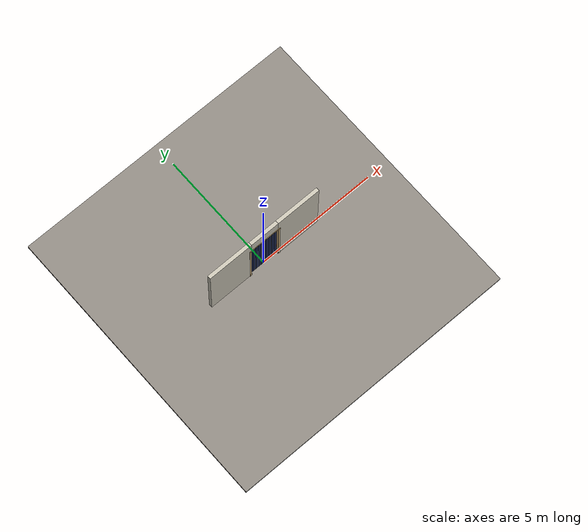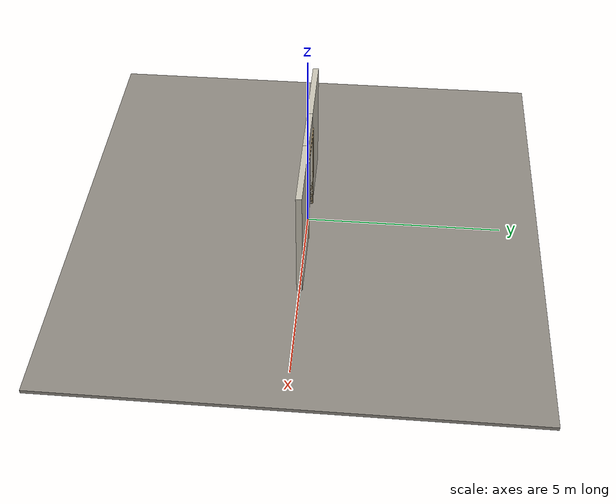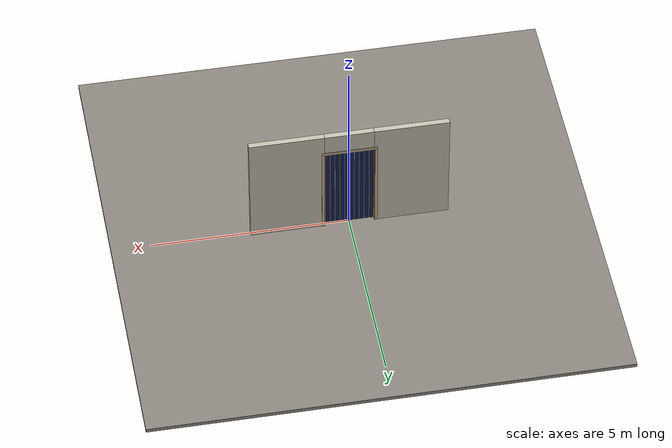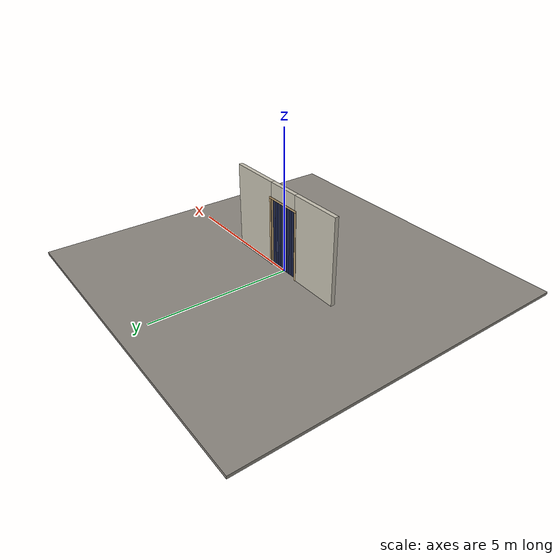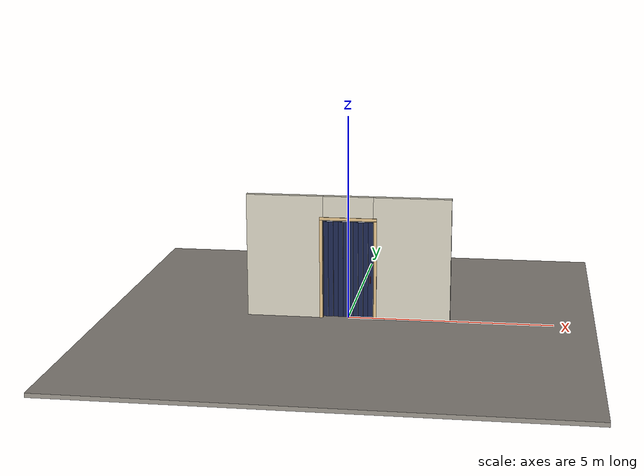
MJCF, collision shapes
<?xml version="1.0" ?>
<mujoco model="db0927_accordion_full">
  <compiler angle="radian" meshdir="../../hardware" texturedir="../../textures" autolimits="true" inertiafromgeom="false"/>
  <option timestep="0.002" integrator="implicitfast" cone="elliptic" impratio="10" noslip_iterations="3">
    <flag multiccd="enable"/>
  </option>
  <size memory="16M"/>
  <default>
    <geom condim="4" solref="0.005 1" solimp="0.95 0.99 0.001"/>
    <joint solreflimit="0.005 1" solimplimit="0.95 0.99 0.001"/>
    <tendon solreflimit="0.005 1"/>
    <equality solref="0.002 1"/>
  </default>
  <visual>
    <headlight ambient="0.4 0.4 0.4" diffuse="0.7 0.7 0.7" specular="0.2 0.2 0.2"/>
    <quality shadowsize="4096"/>
    <map znear="0.01" zfar="60"/>
  </visual>
  <asset>
    <mesh name="pull_1e5d69a91a" file="pull_1e5d69a91a.obj"/>
    <material name="mat_floor" rgba="0.55 0.53 0.5 1" specular="0.2" shininess="0.15" reflectance="0"/>
    <material name="mat_wall" rgba="0.78 0.76 0.7 1" specular="0.2" shininess="0.1" reflectance="0"/>
    <material name="mat_frame" rgba="0.82 0.7 0.5 1" specular="0.2" shininess="0.45" reflectance="0"/>
    <material name="mat_track" rgba="0.8 0.81 0.83 1" specular="0.8" shininess="0.6" reflectance="0.4"/>
    <material name="mat_hinge" rgba="0.65 0.66 0.68 1" specular="0.74" shininess="0.5" reflectance="0.36"/>
    <material name="mat_panel_0_0" rgba="0.09 0.13 0.28 1" specular="0.2" shininess="0.64" reflectance="0"/>
    <material name="mat_panel_0_1" rgba="0.09 0.13 0.28 1" specular="0.2" shininess="0.64" reflectance="0"/>
    <material name="mat_panel_0_2" rgba="0.09 0.13 0.28 1" specular="0.2" shininess="0.64" reflectance="0"/>
    <material name="mat_panel_0_3" rgba="0.09 0.13 0.28 1" specular="0.2" shininess="0.64" reflectance="0"/>
    <material name="mat_panel_0_4" rgba="0.09 0.13 0.28 1" specular="0.2" shininess="0.64" reflectance="0"/>
    <material name="mat_panel_0_5" rgba="0.09 0.13 0.28 1" specular="0.2" shininess="0.64" reflectance="0"/>
    <material name="mat_panel_0_6" rgba="0.09 0.13 0.28 1" specular="0.2" shininess="0.64" reflectance="0"/>
    <material name="mat_panel_0_7" rgba="0.09 0.13 0.28 1" specular="0.2" shininess="0.64" reflectance="0"/>
    <material name="mat_panel_0_8" rgba="0.09 0.13 0.28 1" specular="0.2" shininess="0.64" reflectance="0"/>
    <material name="mat_panel_0_9" rgba="0.09 0.13 0.28 1" specular="0.2" shininess="0.64" reflectance="0"/>
    <material name="mat_op_stainless" rgba="0.75 0.76 0.77 1" specular="0.8" shininess="0.65" reflectance="0.4"/>
    <texture name="skybox" type="skybox" builtin="gradient" rgb1="0.6 0.7 0.85" rgb2="0.9 0.92 0.95" width="256" height="256"/>
  </asset>
  <worldbody>
    <light name="sun" pos="1.5 -2.5 4" dir="-0.3 0.5 -0.8" directional="true" diffuse="0.8 0.8 0.8" specular="0.3 0.3 0.3" castshadow="true"/>
    <light name="fill" pos="-1.5 2.5 3" dir="0.3 -0.5 -0.7" directional="true" diffuse="0.35 0.35 0.4" castshadow="false"/>
    <camera name="robot_view" pos="0 -2.926563 2.046937" xyaxes="1 0 0 0 0.26963 0.962964" fovy="52"/>
    <camera name="far_view" pos="0 2.926563 2.046937" xyaxes="-1 0 0 0 -0.26963 0.962964" fovy="52"/>
    <camera name="iso" pos="2.224187 -2.458313 2.515188" xyaxes="0.741536 0.670913 0 -0.242917 0.268487 0.932151" fovy="46"/>
    <camera name="detail_handle" pos="0.728029 -0.866 1.28" xyaxes="0.97561 0.219512 0 -0.070934 0.315262 0.94635" fovy="38"/>
    <geom name="floor" type="box" size="6 6 0.05" pos="0 0 -0.05" material="mat_floor" group="0" contype="1" conaffinity="1" friction="0.8 0.005 0.0001" density="2400"/>
    <geom name="wall_left" type="box" size="0.94175 0.0725 1.5275" pos="-1.55825 0 1.5275" material="mat_wall" group="0" contype="1" conaffinity="1" friction="0.6 0.005 0.0001" density="800"/>
    <geom name="wall_right" type="box" size="0.94175 0.0725 1.5275" pos="1.55825 0 1.5275" material="mat_wall" group="0" contype="1" conaffinity="1" friction="0.6 0.005 0.0001" density="800"/>
    <geom name="wall_header" type="box" size="0.6165 0.0725 0.3" pos="0 0 2.755" material="mat_wall" group="0" contype="1" conaffinity="1" friction="0.6 0.005 0.0001" density="800"/>
    <geom name="jamb_hinge" type="box" size="0.0095 0.0725 1.2275" pos="-0.626 0 1.2275" material="mat_frame" group="0" contype="1" conaffinity="1" friction="0.6 0.005 0.0001" density="400"/>
    <geom name="jamb_strike" type="box" size="0.0095 0.0725 1.2275" pos="0.626 0 1.2275" material="mat_frame" group="0" contype="1" conaffinity="1" friction="0.6 0.005 0.0001" density="400"/>
    <geom name="stud_strike" type="box" size="0.015 0.0725 1.2275" pos="0.6505 0 1.2275" material="mat_wall" group="0" contype="1" conaffinity="1" friction="0.6 0.005 0.0001" density="500"/>
    <geom name="jamb_head" type="box" size="0.6505 0.0725 0.0095" pos="0.015 0 2.4645" material="mat_frame" group="0" contype="1" conaffinity="1" friction="0.6 0.005 0.0001" density="400"/>
    <geom name="head_stud" type="box" size="0.6505 0.0725 0.015" pos="0.015 0 2.489" material="mat_wall" group="0" contype="1" conaffinity="1" friction="0.6 0.005 0.0001" density="500"/>
    <geom name="casing_l_n" type="box" size="0.035 0.008 1.237" pos="-0.6655 -0.0805 1.2275" material="mat_frame" group="2" contype="0" conaffinity="0" density="400"/>
    <geom name="casing_r_n" type="box" size="0.035 0.008 1.237" pos="0.6655 -0.0805 1.2275" material="mat_frame" group="2" contype="0" conaffinity="0" density="400"/>
    <geom name="casing_h_n" type="box" size="0.7005 0.008 0.035" pos="0 -0.0805 2.504" material="mat_frame" group="2" contype="0" conaffinity="0" density="400"/>
    <geom name="casing_l_p" type="box" size="0.035 0.008 1.237" pos="-0.6655 0.0805 1.2275" material="mat_frame" group="2" contype="0" conaffinity="0" density="400"/>
    <geom name="casing_r_p" type="box" size="0.035 0.008 1.237" pos="0.6655 0.0805 1.2275" material="mat_frame" group="2" contype="0" conaffinity="0" density="400"/>
    <geom name="casing_h_p" type="box" size="0.7005 0.008 0.035" pos="0 0.0805 2.504" material="mat_frame" group="2" contype="0" conaffinity="0" density="400"/>
    <geom name="fold_track" type="box" size="0.6165 0.02 0.015" pos="0 0 2.44" material="mat_track" group="1" contype="0" conaffinity="0" density="2700"/>
    <site name="approach_point" pos="0 -1.5 0" quat="1 0 0 0" size="0.05" rgba="0.2 0.9 0.2 0.5" group="4"/>
    <site name="goal_point" pos="0 1.5 0" quat="1 0 0 0" size="0.05" rgba="0.2 0.9 0.2 0.5" group="4"/>
    <site name="door_plane_center" pos="0 0 1.2275" quat="1 0 0 0" size="0.02" rgba="0.2 0.9 0.2 0.5" group="4"/>
    <body name="panel_0_0" pos="-0.6165 0 0">
      <inertial pos="0.062256 0 1.230656" mass="4.421632" quat="0.500149 0.500149 0.499851 -0.499851" diaginertia="0.00491225 2.159661335 2.164467151"/>
      <joint name="panel_0_0_hinge" type="hinge" axis="0 0 -1" pos="0.035 0 0" limited="true" range="0 1.48353" damping="1.074699" frictionloss="11.272501" armature="0.02"/>
      <geom name="panel_0_0_slab" type="box" size="0.0575 0.006 1.2" pos="0.0625 0 1.22" material="mat_panel_0_0" group="0" contype="1" conaffinity="1" friction="0.4 0.005 0.0001" density="1"/>
      <geom name="panel_0_0_pivot_pin" type="cylinder" size="0.008 0.0105" pos="0.035 0 2.4205" material="mat_hinge" group="1" contype="0" conaffinity="0" density="7850"/>
      <body name="panel_0_1" pos="0.122 0 0">
        <inertial pos="0.000174 0.005983 1.22" mass="4.733081" quat="0.518419 -0.480876 0.518419 0.480876" diaginertia="0.00011416 2.234303744 2.234369567"/>
        <joint name="panel_0_1_hinge" type="hinge" axis="0 0 -1" pos="0 0.006 0" limited="true" range="-3.141593 0" damping="0.2" frictionloss="0.1" armature="0.005"/>
        <geom name="panel_0_1_slab" type="box" size="0.059 0.006 1.2" pos="0.061 0 1.22" material="mat_panel_0_1" group="0" contype="1" conaffinity="1" friction="0.4 0.005 0.0001" density="1"/>
        <geom name="panel_0_1_knuckle" type="cylinder" size="0.0045 1.19" pos="0 0.006 1.22" material="mat_hinge" group="1" contype="0" conaffinity="0" density="7850"/>
        <body name="panel_0_2" pos="0.122 0 0">
          <inertial pos="0.000174 -0.005983 1.22" mass="4.733081" quat="0.480876 -0.518419 0.480876 0.518419" diaginertia="0.00011416 2.234303744 2.234369567"/>
          <joint name="panel_0_2_hinge" type="hinge" axis="0 0 -1" pos="0 -0.006 0" limited="true" range="0 3.141593" damping="0.2" frictionloss="0.1" armature="0.005"/>
          <geom name="panel_0_2_slab" type="box" size="0.059 0.006 1.2" pos="0.061 0 1.22" material="mat_panel_0_2" group="0" contype="1" conaffinity="1" friction="0.4 0.005 0.0001" density="1"/>
          <geom name="panel_0_2_knuckle" type="cylinder" size="0.0045 1.19" pos="0 -0.006 1.22" material="mat_hinge" group="1" contype="0" conaffinity="0" density="7850"/>
          <body name="panel_0_3" pos="0.122 0 0">
            <inertial pos="0.000174 0.005983 1.22" mass="4.733081" quat="0.518419 -0.480876 0.518419 0.480876" diaginertia="0.00011416 2.234303744 2.234369567"/>
            <joint name="panel_0_3_hinge" type="hinge" axis="0 0 -1" pos="0 0.006 0" limited="true" range="-3.141593 0" damping="0.2" frictionloss="0.1" armature="0.005"/>
            <geom name="panel_0_3_slab" type="box" size="0.059 0.006 1.2" pos="0.061 0 1.22" material="mat_panel_0_3" group="0" contype="1" conaffinity="1" friction="0.4 0.005 0.0001" density="1"/>
            <geom name="panel_0_3_knuckle" type="cylinder" size="0.0045 1.19" pos="0 0.006 1.22" material="mat_hinge" group="1" contype="0" conaffinity="0" density="7850"/>
            <body name="panel_0_4" pos="0.122 0 0">
              <inertial pos="0.000174 -0.005983 1.22" mass="4.733081" quat="0.480876 -0.518419 0.480876 0.518419" diaginertia="0.00011416 2.234303744 2.234369567"/>
              <joint name="panel_0_4_hinge" type="hinge" axis="0 0 -1" pos="0 -0.006 0" limited="true" range="0 3.141593" damping="0.2" frictionloss="0.1" armature="0.005"/>
              <geom name="panel_0_4_slab" type="box" size="0.059 0.006 1.2" pos="0.061 0 1.22" material="mat_panel_0_4" group="0" contype="1" conaffinity="1" friction="0.4 0.005 0.0001" density="1"/>
              <geom name="panel_0_4_knuckle" type="cylinder" size="0.0045 1.19" pos="0 -0.006 1.22" material="mat_hinge" group="1" contype="0" conaffinity="0" density="7850"/>
              <body name="panel_0_5" pos="0.122 0 0">
                <inertial pos="0.000174 0.005983 1.22" mass="4.733081" quat="0.518419 -0.480876 0.518419 0.480876" diaginertia="0.00011416 2.234303744 2.234369567"/>
                <joint name="panel_0_5_hinge" type="hinge" axis="0 0 -1" pos="0 0.006 0" limited="true" range="-3.141593 0" damping="0.2" frictionloss="0.1" armature="0.005"/>
                <geom name="panel_0_5_slab" type="box" size="0.059 0.006 1.2" pos="0.061 0 1.22" material="mat_panel_0_5" group="0" contype="1" conaffinity="1" friction="0.4 0.005 0.0001" density="1"/>
                <geom name="panel_0_5_knuckle" type="cylinder" size="0.0045 1.19" pos="0 0.006 1.22" material="mat_hinge" group="1" contype="0" conaffinity="0" density="7850"/>
                <body name="panel_0_6" pos="0.122 0 0">
                  <inertial pos="0.000174 -0.005983 1.22" mass="4.733081" quat="0.480876 -0.518419 0.480876 0.518419" diaginertia="0.00011416 2.234303744 2.234369567"/>
                  <joint name="panel_0_6_hinge" type="hinge" axis="0 0 -1" pos="0 -0.006 0" limited="true" range="0 3.141593" damping="0.2" frictionloss="0.1" armature="0.005"/>
                  <geom name="panel_0_6_slab" type="box" size="0.059 0.006 1.2" pos="0.061 0 1.22" material="mat_panel_0_6" group="0" contype="1" conaffinity="1" friction="0.4 0.005 0.0001" density="1"/>
                  <geom name="panel_0_6_knuckle" type="cylinder" size="0.0045 1.19" pos="0 -0.006 1.22" material="mat_hinge" group="1" contype="0" conaffinity="0" density="7850"/>
                  <body name="panel_0_7" pos="0.122 0 0">
                    <inertial pos="0.000174 0.005983 1.22" mass="4.733081" quat="0.518419 -0.480876 0.518419 0.480876" diaginertia="0.00011416 2.234303744 2.234369567"/>
                    <joint name="panel_0_7_hinge" type="hinge" axis="0 0 -1" pos="0 0.006 0" limited="true" range="-3.141593 0" damping="0.2" frictionloss="0.1" armature="0.005"/>
                    <geom name="panel_0_7_slab" type="box" size="0.059 0.006 1.2" pos="0.061 0 1.22" material="mat_panel_0_7" group="0" contype="1" conaffinity="1" friction="0.4 0.005 0.0001" density="1"/>
                    <geom name="panel_0_7_knuckle" type="cylinder" size="0.0045 1.19" pos="0 0.006 1.22" material="mat_hinge" group="1" contype="0" conaffinity="0" density="7850"/>
                    <body name="panel_0_8" pos="0.122 0 0">
                      <inertial pos="0.000174 -0.005983 1.22" mass="4.733081" quat="0.480876 -0.518419 0.480876 0.518419" diaginertia="0.00011416 2.234303744 2.234369567"/>
                      <joint name="panel_0_8_hinge" type="hinge" axis="0 0 -1" pos="0 -0.006 0" limited="true" range="0 3.141593" damping="0.2" frictionloss="0.1" armature="0.005"/>
                      <geom name="panel_0_8_slab" type="box" size="0.059 0.006 1.2" pos="0.061 0 1.22" material="mat_panel_0_8" group="0" contype="1" conaffinity="1" friction="0.4 0.005 0.0001" density="1"/>
                      <geom name="panel_0_8_knuckle" type="cylinder" size="0.0045 1.19" pos="0 -0.006 1.22" material="mat_hinge" group="1" contype="0" conaffinity="0" density="7850"/>
                      <body name="panel_0_9" pos="0.122 0 0">
                        <inertial pos="0.018361 -0.011072 1.159748" mass="5.183639" quat="0.654491 -0.27526 0.651208 0.267958" diaginertia="0.009011116 1.83164189 1.83993401"/>
                        <joint name="panel_0_9_hinge" type="hinge" axis="0 0 -1" pos="0 0.006 0" limited="true" range="-3.141593 0" damping="0.2" frictionloss="0.1" armature="0.005"/>
                        <geom name="panel_0_9_slab" type="box" size="0.062265 0.006 1.2" pos="0.064265 0 1.22" material="mat_panel_0_9" group="0" contype="1" conaffinity="1" friction="0.4 0.005 0.0001" density="1"/>
                        <geom name="panel_0_9_knuckle" type="cylinder" size="0.0045 1.19" pos="0 0.006 1.22" material="mat_hinge" group="1" contype="0" conaffinity="0" density="7850"/>
                        <geom name="panel_0_9_pull_n" type="mesh" mesh="pull_1e5d69a91a" pos="0.066529 -0.006 1" quat="0.707107 0.707107 0 0" material="mat_op_stainless" group="1" contype="0" conaffinity="0" density="3000"/>
                        <geom name="panel_0_9_pull_col_n" type="capsule" size="0.0095 0.08" pos="0.066529 -0.066 1" material="mat_op_stainless" group="3" contype="1" conaffinity="1" rgba="0.8 0.3 0.3 0.25" friction="0.7 0.01 0.0001" density="3000"/>
                        <site name="panel_0_9_pull_grip_n" pos="0.066529 -0.066 1" quat="1 0 0 0" size="0.012" rgba="0.2 0.9 0.2 0.5" group="4"/>
                      </body>
                    </body>
                  </body>
                </body>
              </body>
            </body>
          </body>
        </body>
      </body>
    </body>
  </worldbody>
  <equality>
    <joint name="panel_0_1_couple" joint1="panel_0_1_hinge" joint2="panel_0_0_hinge" polycoef="0 -2 0 0 0" active="true"/>
    <joint name="panel_0_2_couple" joint1="panel_0_2_hinge" joint2="panel_0_0_hinge" polycoef="0 2 0 0 0" active="true"/>
    <joint name="panel_0_3_couple" joint1="panel_0_3_hinge" joint2="panel_0_0_hinge" polycoef="0 -2 0 0 0" active="true"/>
    <joint name="panel_0_4_couple" joint1="panel_0_4_hinge" joint2="panel_0_0_hinge" polycoef="0 2 0 0 0" active="true"/>
    <joint name="panel_0_5_couple" joint1="panel_0_5_hinge" joint2="panel_0_0_hinge" polycoef="0 -2 0 0 0" active="true"/>
    <joint name="panel_0_6_couple" joint1="panel_0_6_hinge" joint2="panel_0_0_hinge" polycoef="0 2 0 0 0" active="true"/>
    <joint name="panel_0_7_couple" joint1="panel_0_7_hinge" joint2="panel_0_0_hinge" polycoef="0 -2 0 0 0" active="true"/>
    <joint name="panel_0_8_couple" joint1="panel_0_8_hinge" joint2="panel_0_0_hinge" polycoef="0 2 0 0 0" active="true"/>
    <joint name="panel_0_9_couple" joint1="panel_0_9_hinge" joint2="panel_0_0_hinge" polycoef="0 -2 0 0 0" active="true"/>
  </equality>
  <sensor>
    <jointpos name="panel_0_0_hinge_pos" joint="panel_0_0_hinge"/>
    <jointvel name="panel_0_0_hinge_vel" joint="panel_0_0_hinge"/>
    <jointpos name="panel_0_1_hinge_pos" joint="panel_0_1_hinge"/>
    <jointvel name="panel_0_1_hinge_vel" joint="panel_0_1_hinge"/>
    <jointpos name="panel_0_2_hinge_pos" joint="panel_0_2_hinge"/>
    <jointvel name="panel_0_2_hinge_vel" joint="panel_0_2_hinge"/>
    <jointpos name="panel_0_3_hinge_pos" joint="panel_0_3_hinge"/>
    <jointvel name="panel_0_3_hinge_vel" joint="panel_0_3_hinge"/>
    <jointpos name="panel_0_4_hinge_pos" joint="panel_0_4_hinge"/>
    <jointvel name="panel_0_4_hinge_vel" joint="panel_0_4_hinge"/>
    <jointpos name="panel_0_5_hinge_pos" joint="panel_0_5_hinge"/>
    <jointvel name="panel_0_5_hinge_vel" joint="panel_0_5_hinge"/>
    <jointpos name="panel_0_6_hinge_pos" joint="panel_0_6_hinge"/>
    <jointvel name="panel_0_6_hinge_vel" joint="panel_0_6_hinge"/>
    <jointpos name="panel_0_7_hinge_pos" joint="panel_0_7_hinge"/>
    <jointvel name="panel_0_7_hinge_vel" joint="panel_0_7_hinge"/>
    <jointpos name="panel_0_8_hinge_pos" joint="panel_0_8_hinge"/>
    <jointvel name="panel_0_8_hinge_vel" joint="panel_0_8_hinge"/>
    <jointpos name="panel_0_9_hinge_pos" joint="panel_0_9_hinge"/>
    <jointvel name="panel_0_9_hinge_vel" joint="panel_0_9_hinge"/>
  </sensor>
</mujoco>
